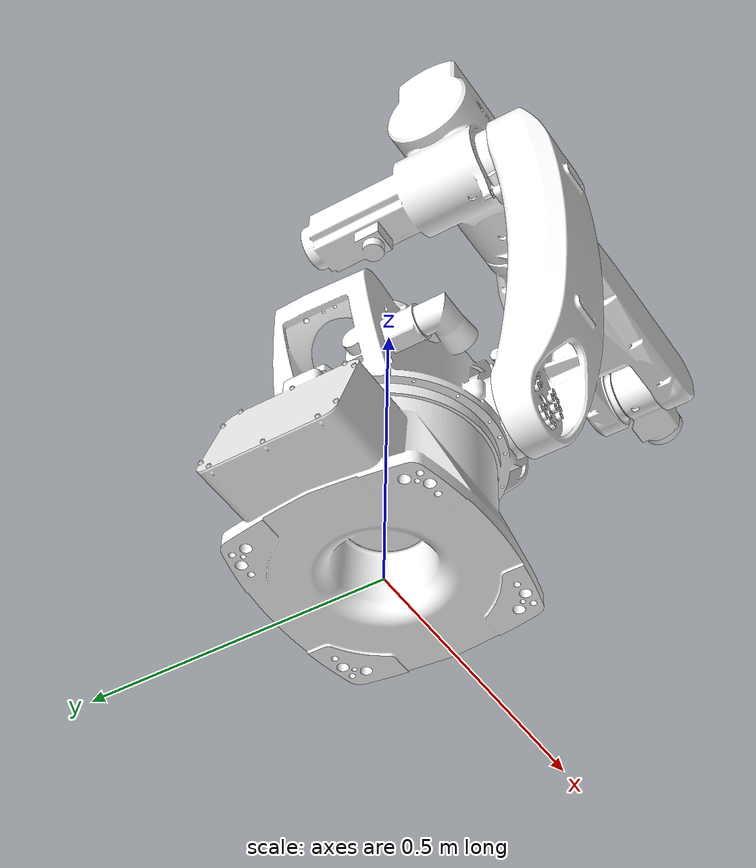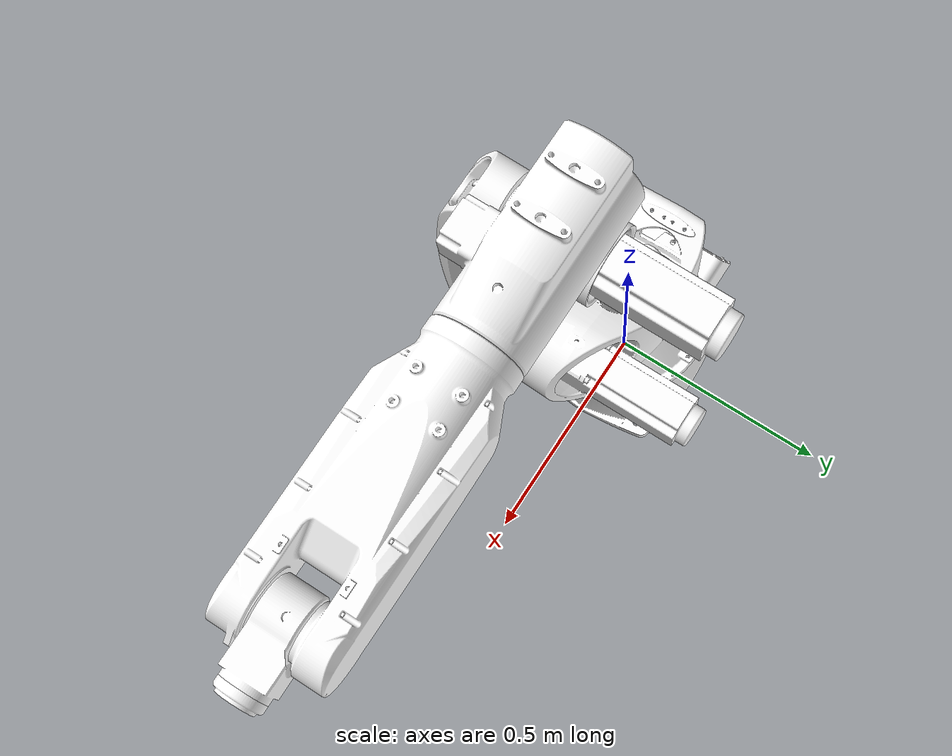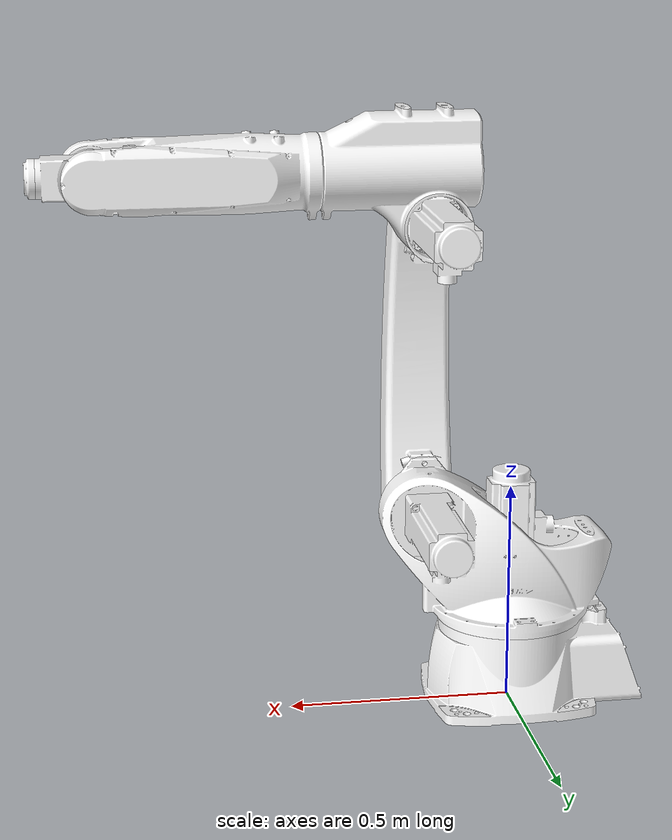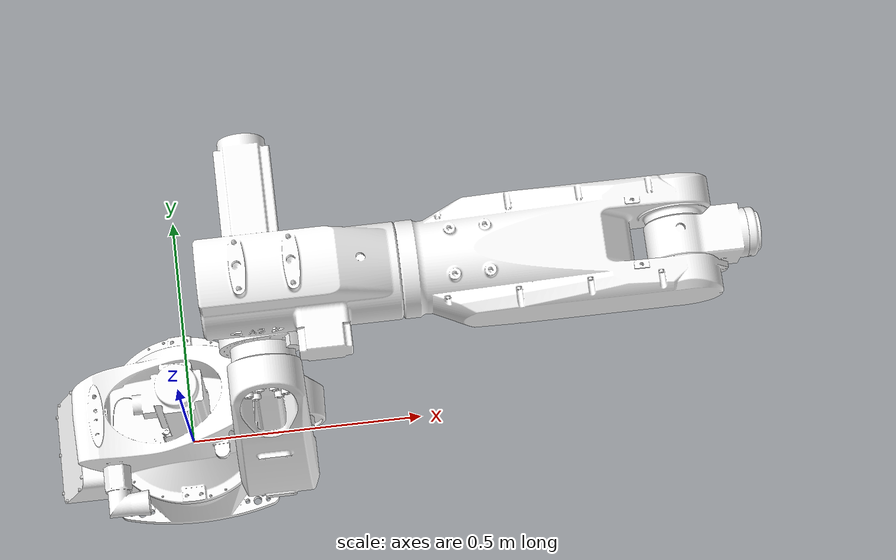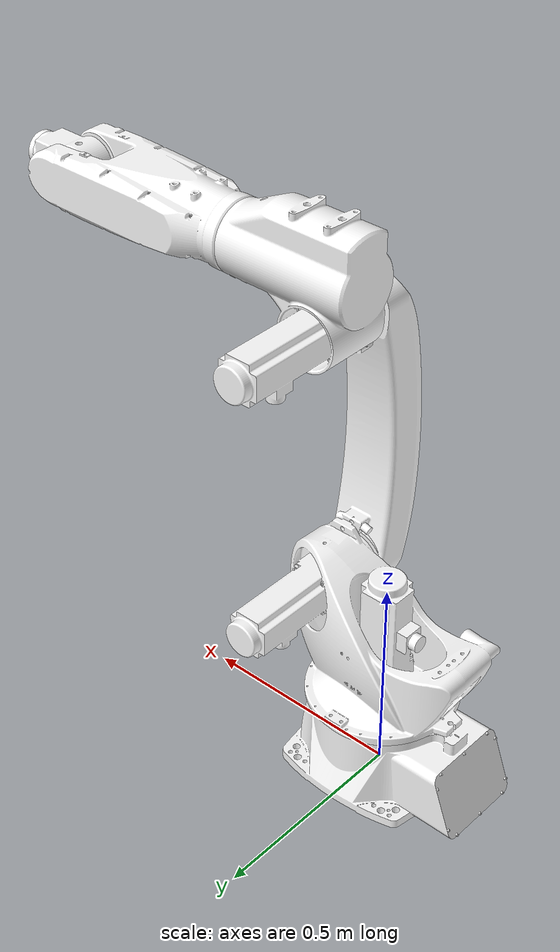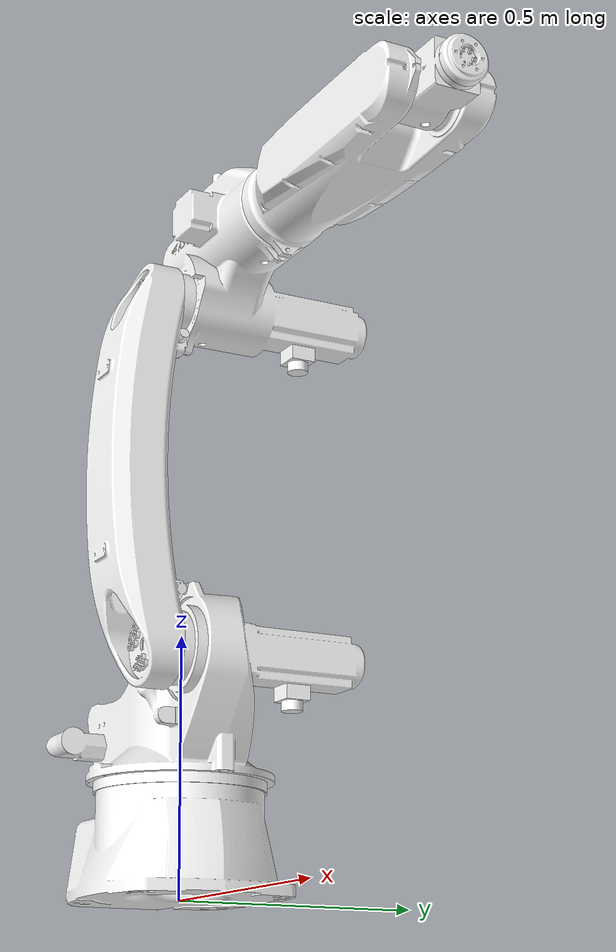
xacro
<?xml version="1.0" ?>
<robot name="jari_robot_12kg" xmlns:xacro="http://www.ros.org/wiki/xacro">

<!-- PROPERTY LIST -->
    <xacro:property name="PI" value="3.141592654"/>
	<!-- LENGTH PROPERTY -->
    <xacro:property name="L1" value="0.198"/>
    <xacro:property name="L2" value="0.235"/>
    <xacro:property name="L3" value="0.185"/>
    <xacro:property name="L4" value="0.670"/>
    <xacro:property name="L5" value="0.115"/>
    <xacro:property name="L6" value="-0.01"/>
    <xacro:property name="L7" value="0.2455"/>
	<xacro:property name="L8" value="0.4795"/>
	<xacro:property name="L9" value="0.1164"/>
	<!-- JOINT LIMIT PROPERTY -->
	<xacro:property name="JOINT1_MIN" value="${(170*PI/180)}"/>
	<xacro:property name="JOINT1_MAX" value="${(-170*PI/180)}"/>
	<xacro:property name="JOINT2_MIN" value="${(110*PI/180)}"/>
	<xacro:property name="JOINT2_MAX" value="${(-110*PI/180)}"/>
	<xacro:property name="JOINT3_MIN" value="${(40*PI/180)}"/>
	<xacro:property name="JOINT3_MAX" value="${(-220*PI/180)}"/>
	<xacro:property name="JOINT4_MIN" value="${(180*PI/180)}"/>
	<xacro:property name="JOINT4_MAX" value="${(-180*PI/180)}"/>
	<xacro:property name="JOINT5_MIN" value="${(120*PI/180)}"/>
	<xacro:property name="JOINT5_MAX" value="${(-120*PI/180)}"/>
	<xacro:property name="JOINT6_MIN" value="${(360*PI/180)}"/>
	<xacro:property name="JOINT6_MAX" value="${(-360*PI/180)}"/>
<!-- LINK -->
<link name="base_link">
    <visual>
        <origin xyz="0 0 0" rpy="0 0 0" />
        <geometry>
        <mesh filename="package://jari_robot_12kg_description/meshes/0_base.stl"/>
        </geometry>
        <material name="jari_robot_color">
            <color rgba="1.2 1.2 1.2 1"/>
        </material>
    </visual>
</link>

<link name="base_to_arm1_link">
    <visual>
        <origin xyz="0 0 ${-L1}" rpy="0 0 0" />
		<!--origin xyz="0 0 -0.198" rpy="0 0 0" /-->
        <geometry>
        <mesh filename="package://jari_robot_12kg_description/meshes/1_base_to_arm1.stl"/>
        </geometry>
        <material name="jari_robot_color" />
    </visual>
</link>

<link name="arm1_link">
    <visual>
        <origin xyz="${-L3} 0 ${-(L1+L2)}" rpy="0 0 0" />
		<!--origin xyz="-0.185 0 -0.433" rpy="0 0 0" /-->
        <geometry>
        <mesh filename="package://jari_robot_12kg_description/meshes/2_arm1.stl"/>
        </geometry>
        <material name="jari_robot_color" />
    </visual>
</link>

<link name="elbow_link">
    <visual>
		<origin xyz="${-L3} 0 ${-(L1+L2+L4)}" rpy="0 0 0" />
        <!--origin xyz="-0.185 0 -1.103" rpy="0 0 0" /-->
        <geometry>
        <mesh filename="package://jari_robot_12kg_description/meshes/3_elbow.stl"/>
        </geometry>
        <material name="jari_robot_color" />
    </visual>
</link>

<link name="arm2_link">
    <visual>
        <origin xyz="${-(L3+L7)} ${-L6} ${-(L1+L2+L4+L5)}" rpy="0 0 0" />
		<!--origin xyz="-0.4305 0.01 -1.218" rpy="0 0 0" /-->
        <geometry>
        <mesh filename="package://jari_robot_12kg_description/meshes/4_arm2.stl"/>
        </geometry>
        <material name="jari_robot_color" />
    </visual>
</link>

<link name="wrist_link">
    <visual>
		<origin xyz="${-(L3+L7+L8)} ${-L6} ${-(L1+L2+L4+L5)}" rpy="0 0 0" />
        <!--origin xyz="-0.91 0.01 -1.218" rpy="0 0 0" /-->
        <geometry>
        <mesh filename="package://jari_robot_12kg_description/meshes/5_wrist.stl"/>
        </geometry>
        <material name="jari_robot_color" />
    </visual>
</link>

<link name="wrist_to_tool_link">
    <visual>
		<origin xyz="${-(L3+L7+L8+L9)} ${-L6} ${-(L1+L2+L4+L5)}" rpy="0 0 0" />
        <!--origin xyz="-1.0264 0.01 -1.218" rpy="0 0 0" /-->
        <geometry>
        <mesh filename="package://jari_robot_12kg_description/meshes/6_tool.stl"/>
        </geometry>
        <material name="jari_robot_color" />
    </visual>
</link>

<link name="tool_link" />

<!-- JOINT -->
<joint name="base_joint" type="revolute">
    <origin rpy="0 0 0" xyz="0 0 ${L1}"/>
    <parent link="base_link"/>
    <child link="base_to_arm1_link"/>
    <axis xyz="0 0 1"/>
    <limit effort="0" lower="${JOINT1_MIN}" upper="${JOINT1_MAX}" velocity="10"/>
</joint>

<joint name="base_arm1_joint" type="revolute">
    <origin rpy="0 0 0" xyz="${L3} 0 ${L2}"/>
    <parent link="base_to_arm1_link"/>
    <child link="arm1_link"/>
    <axis xyz="0 1 0"/>
    <limit effort="0" lower="${JOINT2_MIN}" upper="${JOINT2_MAX}" velocity="10"/>
</joint>

<joint name="arm1_elbow_joint" type="revolute">
    <origin rpy="0 0 0" xyz="0 0 ${L4}"/>
    <parent link="arm1_link"/>
    <child link="elbow_link"/>
    <axis xyz="0 1 0"/>
    <limit effort="0" lower="${JOINT3_MIN}" upper="${JOINT3_MAX}" velocity="10"/>
</joint>

<joint name="elbow_arm2_joint" type="revolute">
    <origin rpy="0 0 0" xyz="${L7} ${L6} ${L5}"/>
    <parent link="elbow_link"/>
    <child link="arm2_link"/>
    <axis xyz="1 0 0"/>
    <limit effort="0" lower="${JOINT4_MIN}" upper="${JOINT4_MAX}" velocity="10"/>
</joint>

<joint name="arm2_wrist_joint" type="revolute">
    <origin rpy="0 0 0" xyz="${L8} 0 0"/>
    <parent link="arm2_link"/>
    <child link="wrist_link"/>
    <axis xyz="0 1 0"/>
    <limit effort="0" lower="${JOINT5_MIN}" upper="${JOINT5_MAX}" velocity="10"/>
</joint>

<joint name="wrist_tool_joint" type="revolute">
    <origin rpy="0 0 0" xyz="${L9} 0 0"/>
    <parent link="wrist_link"/>
    <child link="wrist_to_tool_link"/>
    <axis xyz="1 0 0"/>
    <limit effort="0" lower="${JOINT6_MIN}" upper="${JOINT6_MAX}" velocity="10"/>
</joint>

<joint name="tool_joint" type="fixed">
	<origin rpy="0 0 0" xyz="0 0 0"/>
    <parent link="wrist_to_tool_link"/>
    <child link="tool_link"/>
</joint>

</robot>
